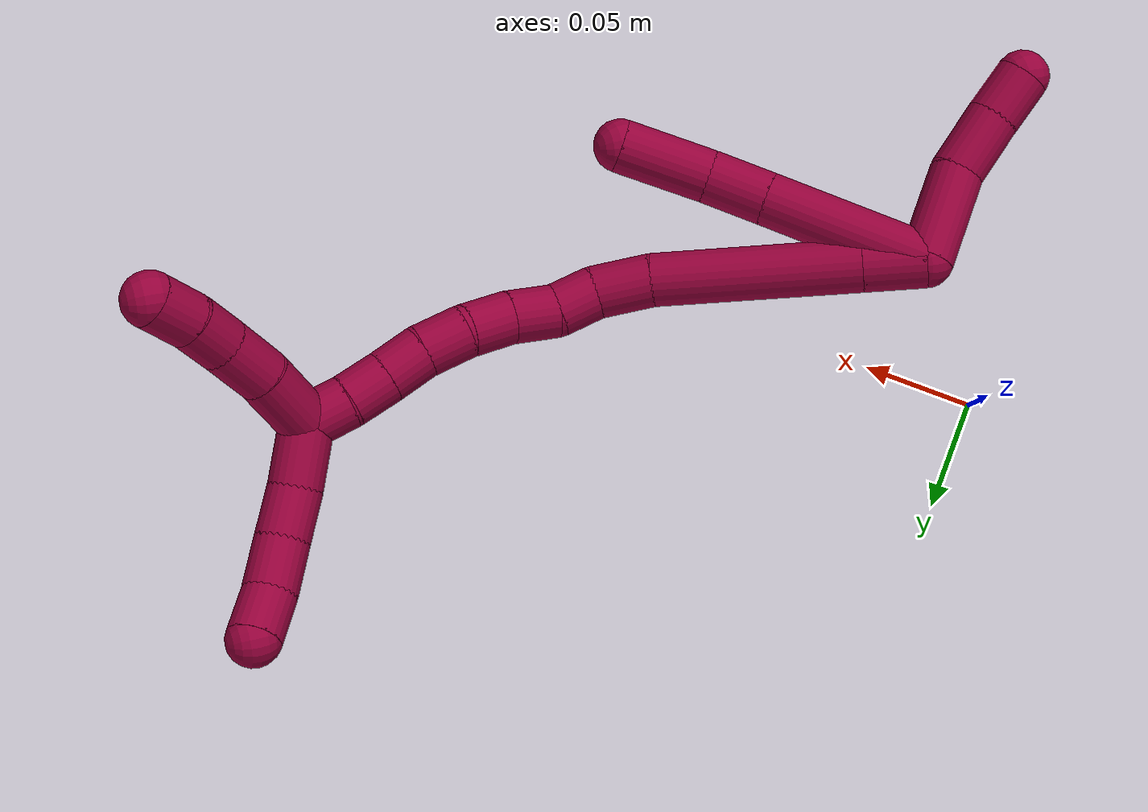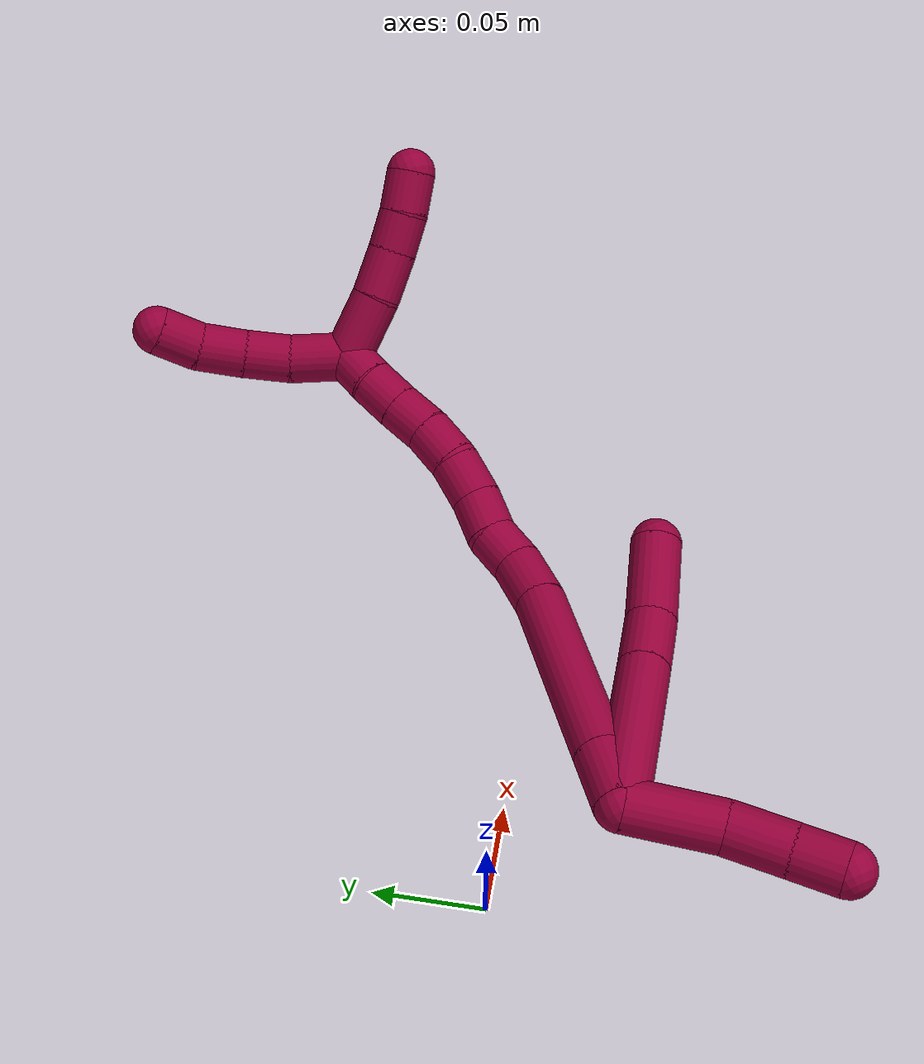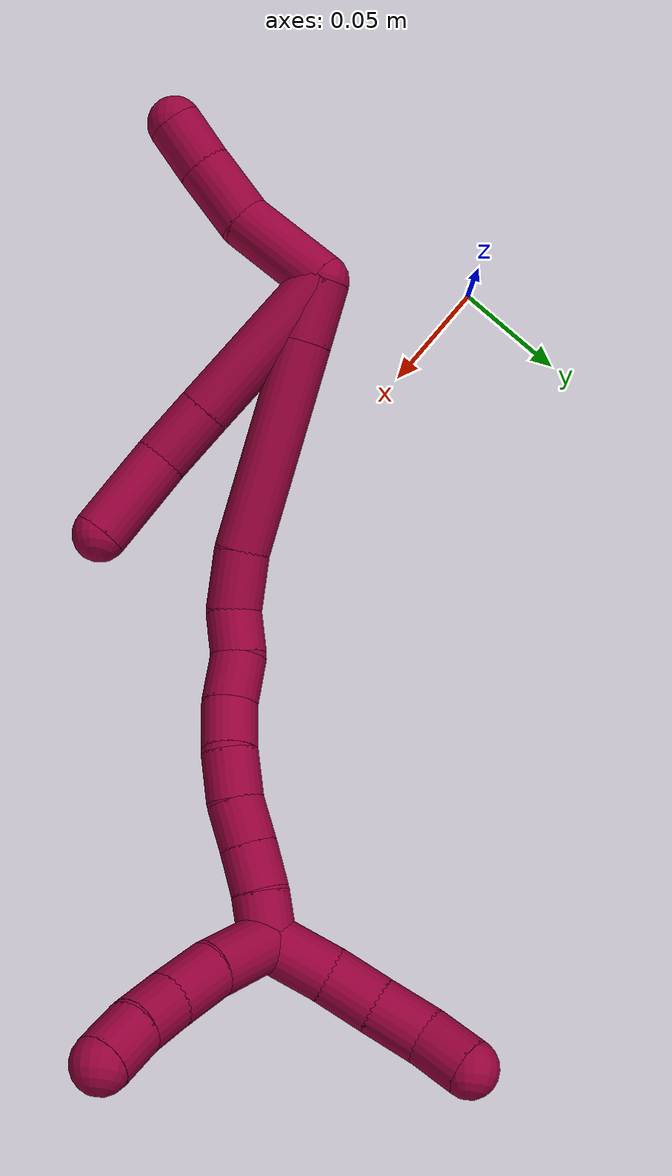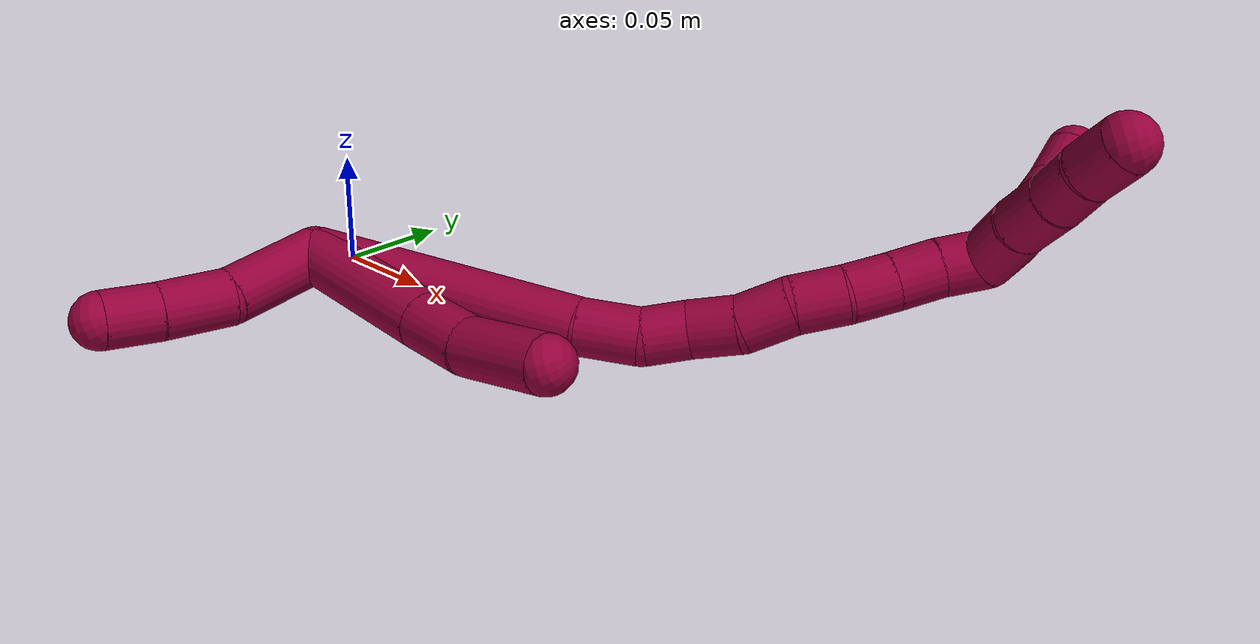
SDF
<sdf version="1.7">
 <world name="default">
  <model name="photoneo_s_sensor">
   <static>1</static>
   <pose>0 0 2 1.57079 1.57079 3.14159</pose>
   <link name="link">
    <inertial><mass>0.1</mass></inertial>
    <sensor name="sensor" type="depth">
     <update_rate>30</update_rate>
     <camera>
      <horizontal_fov>1.22</horizontal_fov>
      <image><width>1920</width><height>1200</height><format>B8G8R8</format></image>
      <clip><near>0.1</near><far>4</far></clip>
      <depth_camera><output>points</output></depth_camera>
     </camera>
     <plugin name="camera_plugin" filename="libgazebo_ros_depth_camera.so">
      <baseline>0.2</baseline>
      <alwaysOn>1</alwaysOn>
      <updateRate>0.0</updateRate>
      <cameraName>camera_ir</cameraName>
      <imageTopicName>/camera/color/image_raw</imageTopicName>
      <cameraInfoTopicName>/camera/color/camera_info</cameraInfoTopicName>
      <depthImageTopicName>/camera/depth/image_raw</depthImageTopicName>
      <depthImageCameraInfoTopicName>/camera/depth/camera_info</depthImageCameraInfoTopicName>
      <pointCloudTopicName>/camera/depth/points</pointCloudTopicName>
      <frameName>fr_optical</frameName>
      <pointCloudCutoff>0.1</pointCloudCutoff>
      <pointCloudCutoffMax>2.0</pointCloudCutoffMax>
      <distortionK1>0</distortionK1>
      <distortionK2>0</distortionK2>
      <distortionK3>0</distortionK3>
      <distortionT1>0</distortionT1>
      <distortionT2>0</distortionT2>
      <CxPrime>0</CxPrime>
      <Cx>0</Cx>
      <Cy>0</Cy>
      <focalLength>0</focalLength>
      <hackBaseline>0</hackBaseline>
     </plugin>
    </sensor>
   </link>
  </model>
  <model name="bin">
   <static>1</static>
   <link name="bottom">
    <collision name="collision-bottom">
     <pose>0 0 -0.01 0 -0 0</pose>
     <geometry><box><size>0.8 0.6 0.02</size></box></geometry>
     <surface>
      <friction><ode><mu>100</mu><mu2>100</mu2></ode></friction>
      <contact><collide_bitmask>65535</collide_bitmask></contact>
     </surface>
    </collision>
   </link>
   <link name="west_wall">
    <collision name="collision-west_wall">
     <pose>-0.41 0 0.1 0 -0 0</pose>
     <geometry><box><size>0.02 0.6 0.2</size></box></geometry>
     <surface>
      <friction><ode><mu>100</mu><mu2>100</mu2></ode></friction>
      <contact><collide_bitmask>65535</collide_bitmask></contact>
     </surface>
    </collision>
   </link>
   <link name="east_wall">
    <collision name="collision-east_wall">
     <pose>0.41 0 0.1 0 -0 0</pose>
     <geometry><box><size>0.02 0.6 0.2</size></box></geometry>
     <surface>
      <friction><ode><mu>100</mu><mu2>100</mu2></ode></friction>
      <contact><collide_bitmask>65535</collide_bitmask></contact>
     </surface>
    </collision>
   </link>
   <link name="south_wall">
    <collision name="collision-south_wall">
     <pose>0 -0.31 0.1 0 -0 0</pose>
     <geometry><box><size>0.8 0.02 0.2</size></box></geometry>
     <surface>
      <friction><ode><mu>100</mu><mu2>100</mu2></ode></friction>
      <contact><collide_bitmask>65535</collide_bitmask></contact>
     </surface>
    </collision>
   </link>
   <link name="north_wall">
    <collision name="collision-north_wall">
     <pose>0 0.31 0.1 0 -0 0</pose>
     <geometry><box><size>0.8 0.02 0.2</size></box></geometry>
     <surface>
      <friction><ode><mu>100</mu><mu2>100</mu2></ode></friction>
      <contact><collide_bitmask>65535</collide_bitmask></contact>
     </surface>
    </collision>
   </link>
  </model>
  <model name="8">
   <static>0</static>
   <link name="8">
    <collision name="collision-cylinder-e_1_2_8">
     <pose>0.015386 -0.022189 0.028019 0.669802 0.4065 0.143202</pose>
     <geometry><cylinder><radius>0.0125</radius><length>0.077823</length></cylinder></geometry>
     <surface>
      <friction><ode><mu>1.16</mu><mu2>1.16</mu2><slip1>0</slip1><slip2>0</slip2></ode></friction>
      <contact><ode><kp>1e+06</kp><kd>1</kd><max_vel>0</max_vel><min_depth>0.001</min_depth></ode></contact>
     </surface>
    </collision>
    <visual name="visual-cylinder-e_1_2_8">
     <pose>0.015386 -0.022189 0.028019 0.669802 0.4065 0.143202</pose>
     <geometry><cylinder><radius>0.0125</radius><length>0.077823</length></cylinder></geometry>
     <material><ambient>0.584314 0 0.227451 1</ambient></material>
    </visual>
    <collision name="collision-cylinder-e_2_8_9">
     <pose>0.036231 -0.052556 0.066712 0.653764 0.385698 0.132222</pose>
     <geometry><cylinder><radius>0.0125</radius><length>0.029026</length></cylinder></geometry>
     <surface>
      <friction><ode><mu>1.16</mu><mu2>1.16</mu2><slip1>0</slip1><slip2>0</slip2></ode></friction>
      <contact><ode><kp>1e+06</kp><kd>1</kd><max_vel>0</max_vel><min_depth>0.001</min_depth></ode></contact>
     </surface>
    </collision>
    <visual name="visual-cylinder-e_2_8_9">
     <pose>0.036231 -0.052556 0.066712 0.653764 0.385698 0.132222</pose>
     <geometry><cylinder><radius>0.0125</radius><length>0.029026</length></cylinder></geometry>
     <material><ambient>0.584314 0 0.227451 1</ambient></material>
    </visual>
    <collision name="collision-cylinder-e_3_9_6">
     <pose>0.046058 -0.071659 0.095471 0.543405 0.203808 0.056961</pose>
     <geometry><cylinder><radius>0.0125</radius><length>0.04315</length></cylinder></geometry>
     <surface>
      <friction><ode><mu>1.16</mu><mu2>1.16</mu2><slip1>0</slip1><slip2>0</slip2></ode></friction>
      <contact><ode><kp>1e+06</kp><kd>1</kd><max_vel>0</max_vel><min_depth>0.001</min_depth></ode></contact>
     </surface>
    </collision>
    <visual name="visual-cylinder-e_3_9_6">
     <pose>0.046058 -0.071659 0.095471 0.543405 0.203808 0.056961</pose>
     <geometry><cylinder><radius>0.0125</radius><length>0.04315</length></cylinder></geometry>
     <material><ambient>0.584314 0 0.227451 1</ambient></material>
    </visual>
    <collision name="collision-cylinder-e_1_2_10">
     <pose>-0.000715 -0.018733 -0.012907 2.17408 -0.031429 -0.059806</pose>
     <geometry><cylinder><radius>0.0125</radius><length>0.04552</length></cylinder></geometry>
     <surface>
      <friction><ode><mu>1.16</mu><mu2>1.16</mu2><slip1>0</slip1><slip2>0</slip2></ode></friction>
      <contact><ode><kp>1e+06</kp><kd>1</kd><max_vel>0</max_vel><min_depth>0.001</min_depth></ode></contact>
     </surface>
    </collision>
    <visual name="visual-cylinder-e_1_2_10">
     <pose>-0.000715 -0.018733 -0.012907 2.17408 -0.031429 -0.059806</pose>
     <geometry><cylinder><radius>0.0125</radius><length>0.04552</length></cylinder></geometry>
     <material><ambient>0.584314 0 0.227451 1</ambient></material>
    </visual>
    <collision name="collision-cylinder-e_2_10_11">
     <pose>-0.005178 -0.048049 -0.03625 2.34929 -0.246978 -0.576944</pose>
     <geometry><cylinder><radius>0.0125</radius><length>0.030657</length></cylinder></geometry>
     <surface>
      <friction><ode><mu>1.16</mu><mu2>1.16</mu2><slip1>0</slip1><slip2>0</slip2></ode></friction>
      <contact><ode><kp>1e+06</kp><kd>1</kd><max_vel>0</max_vel><min_depth>0.001</min_depth></ode></contact>
     </surface>
    </collision>
    <visual name="visual-cylinder-e_2_10_11">
     <pose>-0.005178 -0.048049 -0.03625 2.34929 -0.246978 -0.576944</pose>
     <geometry><cylinder><radius>0.0125</radius><length>0.030657</length></cylinder></geometry>
     <material><ambient>0.584314 0 0.227451 1</ambient></material>
    </visual>
    <collision name="collision-cylinder-e_3_11_5">
     <pose>-0.012487 -0.066575 -0.054817 2.36777 -0.303674 -0.718496</pose>
     <geometry><cylinder><radius>0.0125</radius><length>0.023823</length></cylinder></geometry>
     <surface>
      <friction><ode><mu>1.16</mu><mu2>1.16</mu2><slip1>0</slip1><slip2>0</slip2></ode></friction>
      <contact><ode><kp>1e+06</kp><kd>1</kd><max_vel>0</max_vel><min_depth>0.001</min_depth></ode></contact>
     </surface>
    </collision>
    <visual name="visual-cylinder-e_3_11_5">
     <pose>-0.012487 -0.066575 -0.054817 2.36777 -0.303674 -0.718496</pose>
     <geometry><cylinder><radius>0.0125</radius><length>0.023823</length></cylinder></geometry>
     <material><ambient>0.584314 0 0.227451 1</ambient></material>
    </visual>
    <collision name="collision-cylinder-e_1_2_12">
     <pose>0.006753 -0.002264 0.012564 0.178308 0.486536 0.044363</pose>
     <geometry><cylinder><radius>0.0125</radius><length>0.028884</length></cylinder></geometry>
     <surface>
      <friction><ode><mu>1.16</mu><mu2>1.16</mu2><slip1>0</slip1><slip2>0</slip2></ode></friction>
      <contact><ode><kp>1e+06</kp><kd>1</kd><max_vel>0</max_vel><min_depth>0.001</min_depth></ode></contact>
     </surface>
    </collision>
    <visual name="visual-cylinder-e_1_2_12">
     <pose>0.006753 -0.002264 0.012564 0.178308 0.486536 0.044363</pose>
     <geometry><cylinder><radius>0.0125</radius><length>0.028884</length></cylinder></geometry>
     <material><ambient>0.584314 0 0.227451 1</ambient></material>
    </visual>
    <collision name="collision-cylinder-e_2_12_13">
     <pose>0.0361 -0.012178 0.067055 0.180448 0.487483 0.04499</pose>
     <geometry><cylinder><radius>0.0125</radius><length>0.096479</length></cylinder></geometry>
     <surface>
      <friction><ode><mu>1.16</mu><mu2>1.16</mu2><slip1>0</slip1><slip2>0</slip2></ode></friction>
      <contact><ode><kp>1e+06</kp><kd>1</kd><max_vel>0</max_vel><min_depth>0.001</min_depth></ode></contact>
     </surface>
    </collision>
    <visual name="visual-cylinder-e_2_12_13">
     <pose>0.0361 -0.012178 0.067055 0.180448 0.487483 0.04499</pose>
     <geometry><cylinder><radius>0.0125</radius><length>0.096479</length></cylinder></geometry>
     <material><ambient>0.584314 0 0.227451 1</ambient></material>
    </visual>
    <collision name="collision-cylinder-e_3_13_14">
     <pose>0.064607 -0.019959 0.121172 0.010904 0.451498 0.002504</pose>
     <geometry><cylinder><radius>0.0125</radius><length>0.027094</length></cylinder></geometry>
     <surface>
      <friction><ode><mu>1.16</mu><mu2>1.16</mu2><slip1>0</slip1><slip2>0</slip2></ode></friction>
      <contact><ode><kp>1e+06</kp><kd>1</kd><max_vel>0</max_vel><min_depth>0.001</min_depth></ode></contact>
     </surface>
    </collision>
    <visual name="visual-cylinder-e_3_13_14">
     <pose>0.064607 -0.019959 0.121172 0.010904 0.451498 0.002504</pose>
     <geometry><cylinder><radius>0.0125</radius><length>0.027094</length></cylinder></geometry>
     <material><ambient>0.584314 0 0.227451 1</ambient></material>
    </visual>
    <collision name="collision-cylinder-e_4_14_15">
     <pose>0.072563 -0.017695 0.143039 -0.242798 0.202337 -0.024768</pose>
     <geometry><cylinder><radius>0.0125</radius><length>0.020357</length></cylinder></geometry>
     <surface>
      <friction><ode><mu>1.16</mu><mu2>1.16</mu2><slip1>0</slip1><slip2>0</slip2></ode></friction>
      <contact><ode><kp>1e+06</kp><kd>1</kd><max_vel>0</max_vel><min_depth>0.001</min_depth></ode></contact>
     </surface>
    </collision>
    <visual name="visual-cylinder-e_4_14_15">
     <pose>0.072563 -0.017695 0.143039 -0.242798 0.202337 -0.024768</pose>
     <geometry><cylinder><radius>0.0125</radius><length>0.020357</length></cylinder></geometry>
     <material><ambient>0.584314 0 0.227451 1</ambient></material>
    </visual>
    <collision name="collision-cylinder-e_5_15_16">
     <pose>0.076326 -0.015897 0.163623 0.054822 0.155973 0.004285</pose>
     <geometry><cylinder><radius>0.0125</radius><length>0.022113</length></cylinder></geometry>
     <surface>
      <friction><ode><mu>1.16</mu><mu2>1.16</mu2><slip1>0</slip1><slip2>0</slip2></ode></friction>
      <contact><ode><kp>1e+06</kp><kd>1</kd><max_vel>0</max_vel><min_depth>0.001</min_depth></ode></contact>
     </surface>
    </collision>
    <visual name="visual-cylinder-e_5_15_16">
     <pose>0.076326 -0.015897 0.163623 0.054822 0.155973 0.004285</pose>
     <geometry><cylinder><radius>0.0125</radius><length>0.022113</length></cylinder></geometry>
     <material><ambient>0.584314 0 0.227451 1</ambient></material>
    </visual>
    <collision name="collision-cylinder-e_6_16_17">
     <pose>0.077477 -0.015133 0.185627 -0.122086 -0.050601 0.003093</pose>
     <geometry><cylinder><radius>0.0125</radius><length>0.022391</length></cylinder></geometry>
     <surface>
      <friction><ode><mu>1.16</mu><mu2>1.16</mu2><slip1>0</slip1><slip2>0</slip2></ode></friction>
      <contact><ode><kp>1e+06</kp><kd>1</kd><max_vel>0</max_vel><min_depth>0.001</min_depth></ode></contact>
     </surface>
    </collision>
    <visual name="visual-cylinder-e_6_16_17">
     <pose>0.077477 -0.015133 0.185627 -0.122086 -0.050601 0.003093</pose>
     <geometry><cylinder><radius>0.0125</radius><length>0.022391</length></cylinder></geometry>
     <material><ambient>0.584314 0 0.227451 1</ambient></material>
    </visual>
    <collision name="collision-cylinder-e_7_17_18">
     <pose>0.078626 -0.011135 0.207278 -0.244809 0.156348 -0.019273</pose>
     <geometry><cylinder><radius>0.0125</radius><length>0.022023</length></cylinder></geometry>
     <surface>
      <friction><ode><mu>1.16</mu><mu2>1.16</mu2><slip1>0</slip1><slip2>0</slip2></ode></friction>
      <contact><ode><kp>1e+06</kp><kd>1</kd><max_vel>0</max_vel><min_depth>0.001</min_depth></ode></contact>
     </surface>
    </collision>
    <visual name="visual-cylinder-e_7_17_18">
     <pose>0.078626 -0.011135 0.207278 -0.244809 0.156348 -0.019273</pose>
     <geometry><cylinder><radius>0.0125</radius><length>0.022023</length></cylinder></geometry>
     <material><ambient>0.584314 0 0.227451 1</ambient></material>
    </visual>
    <collision name="collision-cylinder-e_8_18_19">
     <pose>0.081712 -0.004456 0.22703 -0.414142 0.135669 -0.028544</pose>
     <geometry><cylinder><radius>0.0125</radius><length>0.020283</length></cylinder></geometry>
     <surface>
      <friction><ode><mu>1.16</mu><mu2>1.16</mu2><slip1>0</slip1><slip2>0</slip2></ode></friction>
      <contact><ode><kp>1e+06</kp><kd>1</kd><max_vel>0</max_vel><min_depth>0.001</min_depth></ode></contact>
     </surface>
    </collision>
    <visual name="visual-cylinder-e_8_18_19">
     <pose>0.081712 -0.004456 0.22703 -0.414142 0.135669 -0.028544</pose>
     <geometry><cylinder><radius>0.0125</radius><length>0.020283</length></cylinder></geometry>
     <material><ambient>0.584314 0 0.227451 1</ambient></material>
    </visual>
    <collision name="collision-cylinder-e_9_19_20">
     <pose>0.084062 0.003295 0.245606 -0.37649 0.096762 -0.018447</pose>
     <geometry><cylinder><radius>0.0125</radius><length>0.020261</length></cylinder></geometry>
     <surface>
      <friction><ode><mu>1.16</mu><mu2>1.16</mu2><slip1>0</slip1><slip2>0</slip2></ode></friction>
      <contact><ode><kp>1e+06</kp><kd>1</kd><max_vel>0</max_vel><min_depth>0.001</min_depth></ode></contact>
     </surface>
    </collision>
    <visual name="visual-cylinder-e_9_19_20">
     <pose>0.084062 0.003295 0.245606 -0.37649 0.096762 -0.018447</pose>
     <geometry><cylinder><radius>0.0125</radius><length>0.020261</length></cylinder></geometry>
     <material><ambient>0.584314 0 0.227451 1</ambient></material>
    </visual>
    <collision name="collision-cylinder-e_10_20_1">
     <pose>0.086771 0.009728 0.264508 -0.278716 0.172885 -0.024309</pose>
     <geometry><cylinder><radius>0.0125</radius><length>0.020116</length></cylinder></geometry>
     <surface>
      <friction><ode><mu>1.16</mu><mu2>1.16</mu2><slip1>0</slip1><slip2>0</slip2></ode></friction>
      <contact><ode><kp>1e+06</kp><kd>1</kd><max_vel>0</max_vel><min_depth>0.001</min_depth></ode></contact>
     </surface>
    </collision>
    <visual name="visual-cylinder-e_10_20_1">
     <pose>0.086771 0.009728 0.264508 -0.278716 0.172885 -0.024309</pose>
     <geometry><cylinder><radius>0.0125</radius><length>0.020116</length></cylinder></geometry>
     <material><ambient>0.584314 0 0.227451 1</ambient></material>
    </visual>
    <collision name="collision-cylinder-e_1_1_21">
     <pose>0.079881 0.001337 0.283452 0.867929 -0.534276 -0.252315</pose>
     <geometry><cylinder><radius>0.0125</radius><length>0.033859</length></cylinder></geometry>
     <surface>
      <friction><ode><mu>1.16</mu><mu2>1.16</mu2><slip1>0</slip1><slip2>0</slip2></ode></friction>
      <contact><ode><kp>1e+06</kp><kd>1</kd><max_vel>0</max_vel><min_depth>0.001</min_depth></ode></contact>
     </surface>
    </collision>
    <visual name="visual-cylinder-e_1_1_21">
     <pose>0.079881 0.001337 0.283452 0.867929 -0.534276 -0.252315</pose>
     <geometry><cylinder><radius>0.0125</radius><length>0.033859</length></cylinder></geometry>
     <material><ambient>0.584314 0 0.227451 1</ambient></material>
    </visual>
    <collision name="collision-cylinder-e_2_21_22">
     <pose>0.06569 -0.017346 0.301207 0.736979 -0.459412 -0.18009</pose>
     <geometry><cylinder><radius>0.0125</radius><length>0.025122</length></cylinder></geometry>
     <surface>
      <friction><ode><mu>1.16</mu><mu2>1.16</mu2><slip1>0</slip1><slip2>0</slip2></ode></friction>
      <contact><ode><kp>1e+06</kp><kd>1</kd><max_vel>0</max_vel><min_depth>0.001</min_depth></ode></contact>
     </surface>
    </collision>
    <visual name="visual-cylinder-e_2_21_22">
     <pose>0.06569 -0.017346 0.301207 0.736979 -0.459412 -0.18009</pose>
     <geometry><cylinder><radius>0.0125</radius><length>0.025122</length></cylinder></geometry>
     <material><ambient>0.584314 0 0.227451 1</ambient></material>
    </visual>
    <collision name="collision-cylinder-e_3_22_23">
     <pose>0.055075 -0.030396 0.316229 0.686951 -0.528226 -0.19284</pose>
     <geometry><cylinder><radius>0.0125</radius><length>0.020022</length></cylinder></geometry>
     <surface>
      <friction><ode><mu>1.16</mu><mu2>1.16</mu2><slip1>0</slip1><slip2>0</slip2></ode></friction>
      <contact><ode><kp>1e+06</kp><kd>1</kd><max_vel>0</max_vel><min_depth>0.001</min_depth></ode></contact>
     </surface>
    </collision>
    <visual name="visual-cylinder-e_3_22_23">
     <pose>0.055075 -0.030396 0.316229 0.686951 -0.528226 -0.19284</pose>
     <geometry><cylinder><radius>0.0125</radius><length>0.020022</length></cylinder></geometry>
     <material><ambient>0.584314 0 0.227451 1</ambient></material>
    </visual>
    <collision name="collision-cylinder-e_4_23_4">
     <pose>0.045505 -0.040896 0.330951 0.558079 -0.445512 -0.129618</pose>
     <geometry><cylinder><radius>0.0125</radius><length>0.020998</length></cylinder></geometry>
     <surface>
      <friction><ode><mu>1.16</mu><mu2>1.16</mu2><slip1>0</slip1><slip2>0</slip2></ode></friction>
      <contact><ode><kp>1e+06</kp><kd>1</kd><max_vel>0</max_vel><min_depth>0.001</min_depth></ode></contact>
     </surface>
    </collision>
    <visual name="visual-cylinder-e_4_23_4">
     <pose>0.045505 -0.040896 0.330951 0.558079 -0.445512 -0.129618</pose>
     <geometry><cylinder><radius>0.0125</radius><length>0.020998</length></cylinder></geometry>
     <material><ambient>0.584314 0 0.227451 1</ambient></material>
    </visual>
    <collision name="collision-cylinder-e_1_1_24">
     <pose>0.090313 0.026134 0.279173 -1.21147 0.123336 -0.085477</pose>
     <geometry><cylinder><radius>0.0125</radius><length>0.02945</length></cylinder></geometry>
     <surface>
      <friction><ode><mu>1.16</mu><mu2>1.16</mu2><slip1>0</slip1><slip2>0</slip2></ode></friction>
      <contact><ode><kp>1e+06</kp><kd>1</kd><max_vel>0</max_vel><min_depth>0.001</min_depth></ode></contact>
     </surface>
    </collision>
    <visual name="visual-cylinder-e_1_1_24">
     <pose>0.090313 0.026134 0.279173 -1.21147 0.123336 -0.085477</pose>
     <geometry><cylinder><radius>0.0125</radius><length>0.02945</length></cylinder></geometry>
     <material><ambient>0.584314 0 0.227451 1</ambient></material>
    </visual>
    <collision name="collision-cylinder-e_2_24_25">
     <pose>0.091788 0.050436 0.289574 -1.1108 -0.028352 0.017595</pose>
     <geometry><cylinder><radius>0.0125</radius><length>0.023719</length></cylinder></geometry>
     <surface>
      <friction><ode><mu>1.16</mu><mu2>1.16</mu2><slip1>0</slip1><slip2>0</slip2></ode></friction>
      <contact><ode><kp>1e+06</kp><kd>1</kd><max_vel>0</max_vel><min_depth>0.001</min_depth></ode></contact>
     </surface>
    </collision>
    <visual name="visual-cylinder-e_2_24_25">
     <pose>0.091788 0.050436 0.289574 -1.1108 -0.028352 0.017595</pose>
     <geometry><cylinder><radius>0.0125</radius><length>0.023719</length></cylinder></geometry>
     <material><ambient>0.584314 0 0.227451 1</ambient></material>
    </visual>
    <collision name="collision-cylinder-e_3_25_26">
     <pose>0.089897 0.071793 0.300253 -1.10354 -0.128615 0.079236</pose>
     <geometry><cylinder><radius>0.0125</radius><length>0.024246</length></cylinder></geometry>
     <surface>
      <friction><ode><mu>1.16</mu><mu2>1.16</mu2><slip1>0</slip1><slip2>0</slip2></ode></friction>
      <contact><ode><kp>1e+06</kp><kd>1</kd><max_vel>0</max_vel><min_depth>0.001</min_depth></ode></contact>
     </surface>
    </collision>
    <visual name="visual-cylinder-e_3_25_26">
     <pose>0.089897 0.071793 0.300253 -1.10354 -0.128615 0.079236</pose>
     <geometry><cylinder><radius>0.0125</radius><length>0.024246</length></cylinder></geometry>
     <material><ambient>0.584314 0 0.227451 1</ambient></material>
    </visual>
    <collision name="collision-cylinder-e_4_26_3">
     <pose>0.084386 0.091208 0.311711 -0.962718 -0.357963 0.188441</pose>
     <geometry><cylinder><radius>0.0125</radius><length>0.022585</length></cylinder></geometry>
     <surface>
      <friction><ode><mu>1.16</mu><mu2>1.16</mu2><slip1>0</slip1><slip2>0</slip2></ode></friction>
      <contact><ode><kp>1e+06</kp><kd>1</kd><max_vel>0</max_vel><min_depth>0.001</min_depth></ode></contact>
     </surface>
    </collision>
    <visual name="visual-cylinder-e_4_26_3">
     <pose>0.084386 0.091208 0.311711 -0.962718 -0.357963 0.188441</pose>
     <geometry><cylinder><radius>0.0125</radius><length>0.022585</length></cylinder></geometry>
     <material><ambient>0.584314 0 0.227451 1</ambient></material>
    </visual>
    <collision name="collision-sphere-3">
     <pose>0.080429 0.099888 0.317753 0 -0 0</pose>
     <geometry><sphere><radius>0.0125</radius></sphere></geometry>
     <surface>
      <friction><ode><mu>1.16</mu><mu2>1.16</mu2><slip1>0</slip1><slip2>0</slip2></ode></friction>
      <contact><ode><kp>1e+06</kp><kd>1</kd><max_vel>0</max_vel><min_depth>0.001</min_depth></ode></contact>
     </surface>
    </collision>
    <visual name="visual-sphere-3">
     <pose>0.080429 0.099888 0.317753 0 -0 0</pose>
     <geometry><sphere><radius>0.0125</radius></sphere></geometry>
     <material><ambient>0.584314 0 0.227451 1</ambient></material>
    </visual>
    <collision name="collision-sphere-26">
     <pose>0.088342 0.082527 0.305668 0 -0 0</pose>
     <geometry><sphere><radius>0.0125</radius></sphere></geometry>
     <surface>
      <friction><ode><mu>1.16</mu><mu2>1.16</mu2><slip1>0</slip1><slip2>0</slip2></ode></friction>
      <contact><ode><kp>1e+06</kp><kd>1</kd><max_vel>0</max_vel><min_depth>0.001</min_depth></ode></contact>
     </surface>
    </collision>
    <visual name="visual-sphere-26">
     <pose>0.088342 0.082527 0.305668 0 -0 0</pose>
     <geometry><sphere><radius>0.0125</radius></sphere></geometry>
     <material><ambient>0.584314 0 0.227451 1</ambient></material>
    </visual>
    <collision name="collision-sphere-25">
     <pose>0.091452 0.061059 0.294837 0 -0 0</pose>
     <geometry><sphere><radius>0.0125</radius></sphere></geometry>
     <surface>
      <friction><ode><mu>1.16</mu><mu2>1.16</mu2><slip1>0</slip1><slip2>0</slip2></ode></friction>
      <contact><ode><kp>1e+06</kp><kd>1</kd><max_vel>0</max_vel><min_depth>0.001</min_depth></ode></contact>
     </surface>
    </collision>
    <visual name="visual-sphere-25">
     <pose>0.091452 0.061059 0.294837 0 -0 0</pose>
     <geometry><sphere><radius>0.0125</radius></sphere></geometry>
     <material><ambient>0.584314 0 0.227451 1</ambient></material>
    </visual>
    <collision name="collision-sphere-24">
     <pose>0.092124 0.039814 0.284311 0 -0 0</pose>
     <geometry><sphere><radius>0.0125</radius></sphere></geometry>
     <surface>
      <friction><ode><mu>1.16</mu><mu2>1.16</mu2><slip1>0</slip1><slip2>0</slip2></ode></friction>
      <contact><ode><kp>1e+06</kp><kd>1</kd><max_vel>0</max_vel><min_depth>0.001</min_depth></ode></contact>
     </surface>
    </collision>
    <visual name="visual-sphere-24">
     <pose>0.092124 0.039814 0.284311 0 -0 0</pose>
     <geometry><sphere><radius>0.0125</radius></sphere></geometry>
     <material><ambient>0.584314 0 0.227451 1</ambient></material>
    </visual>
    <collision name="collision-sphere-4">
     <pose>0.040981 -0.045913 0.338988 0 -0 0</pose>
     <geometry><sphere><radius>0.0125</radius></sphere></geometry>
     <surface>
      <friction><ode><mu>1.16</mu><mu2>1.16</mu2><slip1>0</slip1><slip2>0</slip2></ode></friction>
      <contact><ode><kp>1e+06</kp><kd>1</kd><max_vel>0</max_vel><min_depth>0.001</min_depth></ode></contact>
     </surface>
    </collision>
    <visual name="visual-sphere-4">
     <pose>0.040981 -0.045913 0.338988 0 -0 0</pose>
     <geometry><sphere><radius>0.0125</radius></sphere></geometry>
     <material><ambient>0.584314 0 0.227451 1</ambient></material>
    </visual>
    <collision name="collision-sphere-23">
     <pose>0.050029 -0.035879 0.322915 0 -0 0</pose>
     <geometry><sphere><radius>0.0125</radius></sphere></geometry>
     <surface>
      <friction><ode><mu>1.16</mu><mu2>1.16</mu2><slip1>0</slip1><slip2>0</slip2></ode></friction>
      <contact><ode><kp>1e+06</kp><kd>1</kd><max_vel>0</max_vel><min_depth>0.001</min_depth></ode></contact>
     </surface>
    </collision>
    <visual name="visual-sphere-23">
     <pose>0.050029 -0.035879 0.322915 0 -0 0</pose>
     <geometry><sphere><radius>0.0125</radius></sphere></geometry>
     <material><ambient>0.584314 0 0.227451 1</ambient></material>
    </visual>
    <collision name="collision-sphere-22">
     <pose>0.06012 -0.024912 0.309544 0 -0 0</pose>
     <geometry><sphere><radius>0.0125</radius></sphere></geometry>
     <surface>
      <friction><ode><mu>1.16</mu><mu2>1.16</mu2><slip1>0</slip1><slip2>0</slip2></ode></friction>
      <contact><ode><kp>1e+06</kp><kd>1</kd><max_vel>0</max_vel><min_depth>0.001</min_depth></ode></contact>
     </surface>
    </collision>
    <visual name="visual-sphere-22">
     <pose>0.06012 -0.024912 0.309544 0 -0 0</pose>
     <geometry><sphere><radius>0.0125</radius></sphere></geometry>
     <material><ambient>0.584314 0 0.227451 1</ambient></material>
    </visual>
    <collision name="collision-sphere-21">
     <pose>0.07126 -0.00978 0.29287 0 -0 0</pose>
     <geometry><sphere><radius>0.0125</radius></sphere></geometry>
     <surface>
      <friction><ode><mu>1.16</mu><mu2>1.16</mu2><slip1>0</slip1><slip2>0</slip2></ode></friction>
      <contact><ode><kp>1e+06</kp><kd>1</kd><max_vel>0</max_vel><min_depth>0.001</min_depth></ode></contact>
     </surface>
    </collision>
    <visual name="visual-sphere-21">
     <pose>0.07126 -0.00978 0.29287 0 -0 0</pose>
     <geometry><sphere><radius>0.0125</radius></sphere></geometry>
     <material><ambient>0.584314 0 0.227451 1</ambient></material>
    </visual>
    <collision name="collision-sphere-1">
     <pose>0.088501 0.012454 0.274034 0 -0 0</pose>
     <geometry><sphere><radius>0.0125</radius></sphere></geometry>
     <surface>
      <friction><ode><mu>1.16</mu><mu2>1.16</mu2><slip1>0</slip1><slip2>0</slip2></ode></friction>
      <contact><ode><kp>1e+06</kp><kd>1</kd><max_vel>0</max_vel><min_depth>0.001</min_depth></ode></contact>
     </surface>
    </collision>
    <visual name="visual-sphere-1">
     <pose>0.088501 0.012454 0.274034 0 -0 0</pose>
     <geometry><sphere><radius>0.0125</radius></sphere></geometry>
     <material><ambient>0.584314 0 0.227451 1</ambient></material>
    </visual>
    <collision name="collision-sphere-11">
     <pose>-0.008925 -0.058631 -0.046687 0 -0 0</pose>
     <geometry><sphere><radius>0.0125</radius></sphere></geometry>
     <surface>
      <friction><ode><mu>1.16</mu><mu2>1.16</mu2><slip1>0</slip1><slip2>0</slip2></ode></friction>
      <contact><ode><kp>1e+06</kp><kd>1</kd><max_vel>0</max_vel><min_depth>0.001</min_depth></ode></contact>
     </surface>
    </collision>
    <visual name="visual-sphere-11">
     <pose>-0.008925 -0.058631 -0.046687 0 -0 0</pose>
     <geometry><sphere><radius>0.0125</radius></sphere></geometry>
     <material><ambient>0.584314 0 0.227451 1</ambient></material>
    </visual>
    <collision name="collision-sphere-10">
     <pose>-0.00143 -0.037466 -0.025813 0 -0 0</pose>
     <geometry><sphere><radius>0.0125</radius></sphere></geometry>
     <surface>
      <friction><ode><mu>1.16</mu><mu2>1.16</mu2><slip1>0</slip1><slip2>0</slip2></ode></friction>
      <contact><ode><kp>1e+06</kp><kd>1</kd><max_vel>0</max_vel><min_depth>0.001</min_depth></ode></contact>
     </surface>
    </collision>
    <visual name="visual-sphere-10">
     <pose>-0.00143 -0.037466 -0.025813 0 -0 0</pose>
     <geometry><sphere><radius>0.0125</radius></sphere></geometry>
     <material><ambient>0.584314 0 0.227451 1</ambient></material>
    </visual>
    <collision name="collision-sphere-6">
     <pose>0.050425 -0.082584 0.113556 0 -0 0</pose>
     <geometry><sphere><radius>0.0125</radius></sphere></geometry>
     <surface>
      <friction><ode><mu>1.16</mu><mu2>1.16</mu2><slip1>0</slip1><slip2>0</slip2></ode></friction>
      <contact><ode><kp>1e+06</kp><kd>1</kd><max_vel>0</max_vel><min_depth>0.001</min_depth></ode></contact>
     </surface>
    </collision>
    <visual name="visual-sphere-6">
     <pose>0.050425 -0.082584 0.113556 0 -0 0</pose>
     <geometry><sphere><radius>0.0125</radius></sphere></geometry>
     <material><ambient>0.584314 0 0.227451 1</ambient></material>
    </visual>
    <collision name="collision-sphere-9">
     <pose>0.041691 -0.060734 0.077386 0 -0 0</pose>
     <geometry><sphere><radius>0.0125</radius></sphere></geometry>
     <surface>
      <friction><ode><mu>1.16</mu><mu2>1.16</mu2><slip1>0</slip1><slip2>0</slip2></ode></friction>
      <contact><ode><kp>1e+06</kp><kd>1</kd><max_vel>0</max_vel><min_depth>0.001</min_depth></ode></contact>
     </surface>
    </collision>
    <visual name="visual-sphere-9">
     <pose>0.041691 -0.060734 0.077386 0 -0 0</pose>
     <geometry><sphere><radius>0.0125</radius></sphere></geometry>
     <material><ambient>0.584314 0 0.227451 1</ambient></material>
    </visual>
    <collision name="collision-sphere-2">
     <geometry><sphere><radius>0.0125</radius></sphere></geometry>
     <surface>
      <friction><ode><mu>1.16</mu><mu2>1.16</mu2><slip1>0</slip1><slip2>0</slip2></ode></friction>
      <contact><ode><kp>1e+06</kp><kd>1</kd><max_vel>0</max_vel><min_depth>0.001</min_depth></ode></contact>
     </surface>
    </collision>
    <visual name="visual-sphere-2">
     <geometry><sphere><radius>0.0125</radius></sphere></geometry>
     <material><ambient>0.584314 0 0.227451 1</ambient></material>
    </visual>
    <collision name="collision-sphere-19">
     <pose>0.083084 -0.000412 0.236229 0 -0 0</pose>
     <geometry><sphere><radius>0.0125</radius></sphere></geometry>
     <surface>
      <friction><ode><mu>1.16</mu><mu2>1.16</mu2><slip1>0</slip1><slip2>0</slip2></ode></friction>
      <contact><ode><kp>1e+06</kp><kd>1</kd><max_vel>0</max_vel><min_depth>0.001</min_depth></ode></contact>
     </surface>
    </collision>
    <visual name="visual-sphere-19">
     <pose>0.083084 -0.000412 0.236229 0 -0 0</pose>
     <geometry><sphere><radius>0.0125</radius></sphere></geometry>
     <material><ambient>0.584314 0 0.227451 1</ambient></material>
    </visual>
    <collision name="collision-sphere-8">
     <pose>0.030771 -0.044378 0.056038 0 -0 0</pose>
     <geometry><sphere><radius>0.0125</radius></sphere></geometry>
     <surface>
      <friction><ode><mu>1.16</mu><mu2>1.16</mu2><slip1>0</slip1><slip2>0</slip2></ode></friction>
      <contact><ode><kp>1e+06</kp><kd>1</kd><max_vel>0</max_vel><min_depth>0.001</min_depth></ode></contact>
     </surface>
    </collision>
    <visual name="visual-sphere-8">
     <pose>0.030771 -0.044378 0.056038 0 -0 0</pose>
     <geometry><sphere><radius>0.0125</radius></sphere></geometry>
     <material><ambient>0.584314 0 0.227451 1</ambient></material>
    </visual>
    <collision name="collision-sphere-5">
     <pose>-0.016049 -0.074518 -0.062947 0 -0 0</pose>
     <geometry><sphere><radius>0.0125</radius></sphere></geometry>
     <surface>
      <friction><ode><mu>1.16</mu><mu2>1.16</mu2><slip1>0</slip1><slip2>0</slip2></ode></friction>
      <contact><ode><kp>1e+06</kp><kd>1</kd><max_vel>0</max_vel><min_depth>0.001</min_depth></ode></contact>
     </surface>
    </collision>
    <visual name="visual-sphere-5">
     <pose>-0.016049 -0.074518 -0.062947 0 -0 0</pose>
     <geometry><sphere><radius>0.0125</radius></sphere></geometry>
     <material><ambient>0.584314 0 0.227451 1</ambient></material>
    </visual>
    <collision name="collision-sphere-12">
     <pose>0.013505 -0.004528 0.025127 0 -0 0</pose>
     <geometry><sphere><radius>0.0125</radius></sphere></geometry>
     <surface>
      <friction><ode><mu>1.16</mu><mu2>1.16</mu2><slip1>0</slip1><slip2>0</slip2></ode></friction>
      <contact><ode><kp>1e+06</kp><kd>1</kd><max_vel>0</max_vel><min_depth>0.001</min_depth></ode></contact>
     </surface>
    </collision>
    <visual name="visual-sphere-12">
     <pose>0.013505 -0.004528 0.025127 0 -0 0</pose>
     <geometry><sphere><radius>0.0125</radius></sphere></geometry>
     <material><ambient>0.584314 0 0.227451 1</ambient></material>
    </visual>
    <collision name="collision-sphere-13">
     <pose>0.058696 -0.019827 0.108983 0 -0 0</pose>
     <geometry><sphere><radius>0.0125</radius></sphere></geometry>
     <surface>
      <friction><ode><mu>1.16</mu><mu2>1.16</mu2><slip1>0</slip1><slip2>0</slip2></ode></friction>
      <contact><ode><kp>1e+06</kp><kd>1</kd><max_vel>0</max_vel><min_depth>0.001</min_depth></ode></contact>
     </surface>
    </collision>
    <visual name="visual-sphere-13">
     <pose>0.058696 -0.019827 0.108983 0 -0 0</pose>
     <geometry><sphere><radius>0.0125</radius></sphere></geometry>
     <material><ambient>0.584314 0 0.227451 1</ambient></material>
    </visual>
    <collision name="collision-sphere-14">
     <pose>0.070518 -0.020092 0.133361 0 -0 0</pose>
     <geometry><sphere><radius>0.0125</radius></sphere></geometry>
     <surface>
      <friction><ode><mu>1.16</mu><mu2>1.16</mu2><slip1>0</slip1><slip2>0</slip2></ode></friction>
      <contact><ode><kp>1e+06</kp><kd>1</kd><max_vel>0</max_vel><min_depth>0.001</min_depth></ode></contact>
     </surface>
    </collision>
    <visual name="visual-sphere-14">
     <pose>0.070518 -0.020092 0.133361 0 -0 0</pose>
     <geometry><sphere><radius>0.0125</radius></sphere></geometry>
     <material><ambient>0.584314 0 0.227451 1</ambient></material>
    </visual>
    <collision name="collision-sphere-15">
     <pose>0.074608 -0.015298 0.152718 0 -0 0</pose>
     <geometry><sphere><radius>0.0125</radius></sphere></geometry>
     <surface>
      <friction><ode><mu>1.16</mu><mu2>1.16</mu2><slip1>0</slip1><slip2>0</slip2></ode></friction>
      <contact><ode><kp>1e+06</kp><kd>1</kd><max_vel>0</max_vel><min_depth>0.001</min_depth></ode></contact>
     </surface>
    </collision>
    <visual name="visual-sphere-15">
     <pose>0.074608 -0.015298 0.152718 0 -0 0</pose>
     <geometry><sphere><radius>0.0125</radius></sphere></geometry>
     <material><ambient>0.584314 0 0.227451 1</ambient></material>
    </visual>
    <collision name="collision-sphere-16">
     <pose>0.078043 -0.016495 0.174529 0 -0 0</pose>
     <geometry><sphere><radius>0.0125</radius></sphere></geometry>
     <surface>
      <friction><ode><mu>1.16</mu><mu2>1.16</mu2><slip1>0</slip1><slip2>0</slip2></ode></friction>
      <contact><ode><kp>1e+06</kp><kd>1</kd><max_vel>0</max_vel><min_depth>0.001</min_depth></ode></contact>
     </surface>
    </collision>
    <visual name="visual-sphere-16">
     <pose>0.078043 -0.016495 0.174529 0 -0 0</pose>
     <geometry><sphere><radius>0.0125</radius></sphere></geometry>
     <material><ambient>0.584314 0 0.227451 1</ambient></material>
    </visual>
    <collision name="collision-sphere-17">
     <pose>0.076911 -0.013772 0.196725 0 -0 0</pose>
     <geometry><sphere><radius>0.0125</radius></sphere></geometry>
     <surface>
      <friction><ode><mu>1.16</mu><mu2>1.16</mu2><slip1>0</slip1><slip2>0</slip2></ode></friction>
      <contact><ode><kp>1e+06</kp><kd>1</kd><max_vel>0</max_vel><min_depth>0.001</min_depth></ode></contact>
     </surface>
    </collision>
    <visual name="visual-sphere-17">
     <pose>0.076911 -0.013772 0.196725 0 -0 0</pose>
     <geometry><sphere><radius>0.0125</radius></sphere></geometry>
     <material><ambient>0.584314 0 0.227451 1</ambient></material>
    </visual>
    <collision name="collision-sphere-18">
     <pose>0.08034 -0.008499 0.217831 0 -0 0</pose>
     <geometry><sphere><radius>0.0125</radius></sphere></geometry>
     <surface>
      <friction><ode><mu>1.16</mu><mu2>1.16</mu2><slip1>0</slip1><slip2>0</slip2></ode></friction>
      <contact><ode><kp>1e+06</kp><kd>1</kd><max_vel>0</max_vel><min_depth>0.001</min_depth></ode></contact>
     </surface>
    </collision>
    <visual name="visual-sphere-18">
     <pose>0.08034 -0.008499 0.217831 0 -0 0</pose>
     <geometry><sphere><radius>0.0125</radius></sphere></geometry>
     <material><ambient>0.584314 0 0.227451 1</ambient></material>
    </visual>
    <collision name="collision-sphere-20">
     <pose>0.085041 0.007002 0.254983 0 -0 0</pose>
     <geometry><sphere><radius>0.0125</radius></sphere></geometry>
     <surface>
      <friction><ode><mu>1.16</mu><mu2>1.16</mu2><slip1>0</slip1><slip2>0</slip2></ode></friction>
      <contact><ode><kp>1e+06</kp><kd>1</kd><max_vel>0</max_vel><min_depth>0.001</min_depth></ode></contact>
     </surface>
    </collision>
    <visual name="visual-sphere-20">
     <pose>0.085041 0.007002 0.254983 0 -0 0</pose>
     <geometry><sphere><radius>0.0125</radius></sphere></geometry>
     <material><ambient>0.584314 0 0.227451 1</ambient></material>
    </visual>
    <inertial>
     <pose>0.048332 -0.012336 0.140473 0 -0 0</pose>
     <mass>0.75</mass>
     <inertia>
      <ixx>0.000176</ixx>
      <ixy>0</ixy>
      <ixz>0</ixz>
      <iyy>0.000137</iyy>
      <iyz>0</iyz>
      <izz>3.1e-05</izz>
     </inertia>
    </inertial>
   </link>
   <pose>0.043744 -0.051486 0.028395 -0.11478 1.20015 0.474212</pose>
  </model>
 </world>
</sdf>
